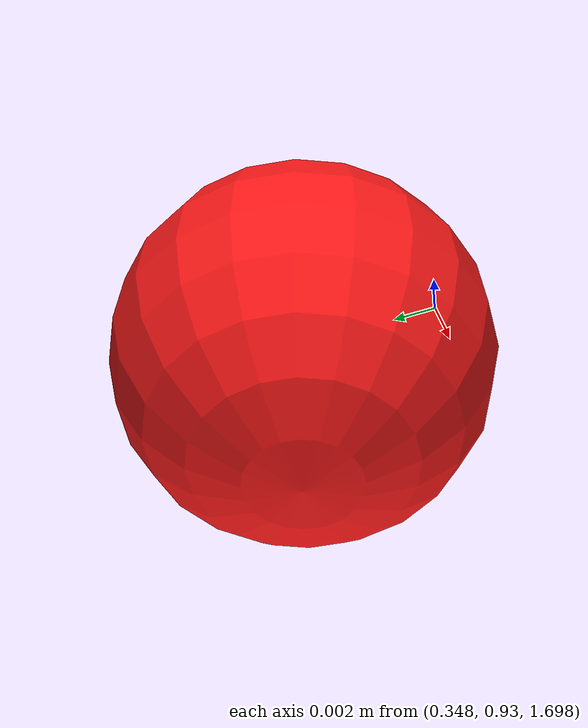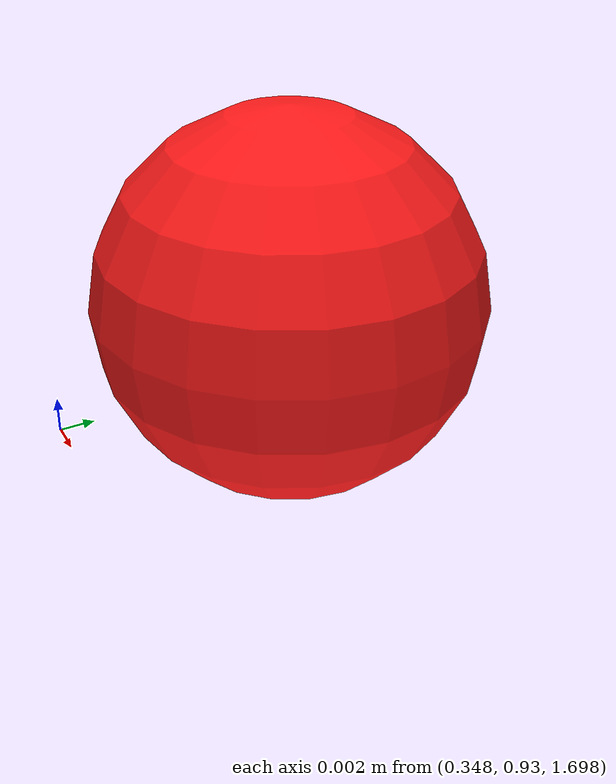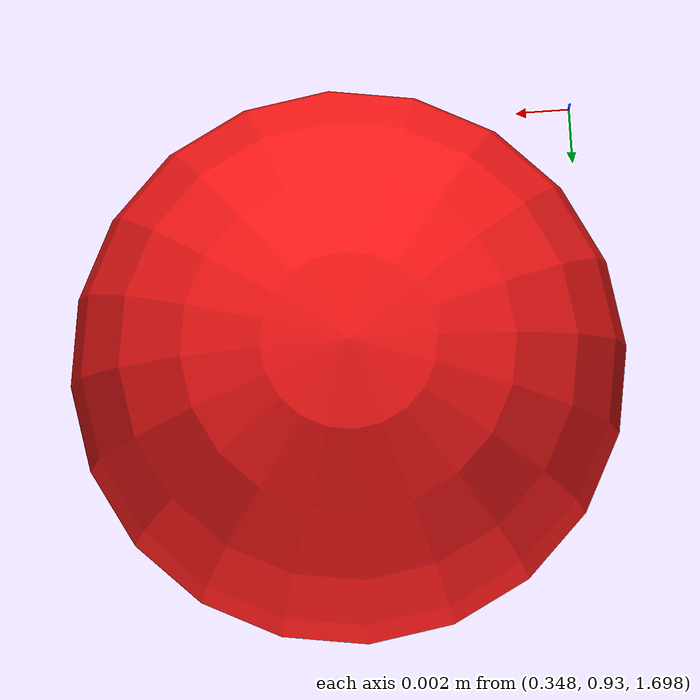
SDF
<?xml version="1.0"?>
<sdf version="1.7">
  <model name="mouth_target">
    <static>true</static>
    <!-- 1 cm in front of the standing model's mouth surface. -->
    <pose>0.357 0.940 1.708 0 0 0</pose>

    <!-- This is intentionally visual-only. The human collision proxy owns
         the physical safety boundary around the mouth. -->
    <link name="mouth_target_link">
      <visual name="mouth_target_marker">
        <geometry>
          <sphere><radius>0.010</radius></sphere>
        </geometry>
        <material>
          <ambient>1.0 0.10 0.10 1.0</ambient>
          <diffuse>1.0 0.10 0.10 1.0</diffuse>
        </material>
      </visual>
    </link>
  </model>
</sdf>
